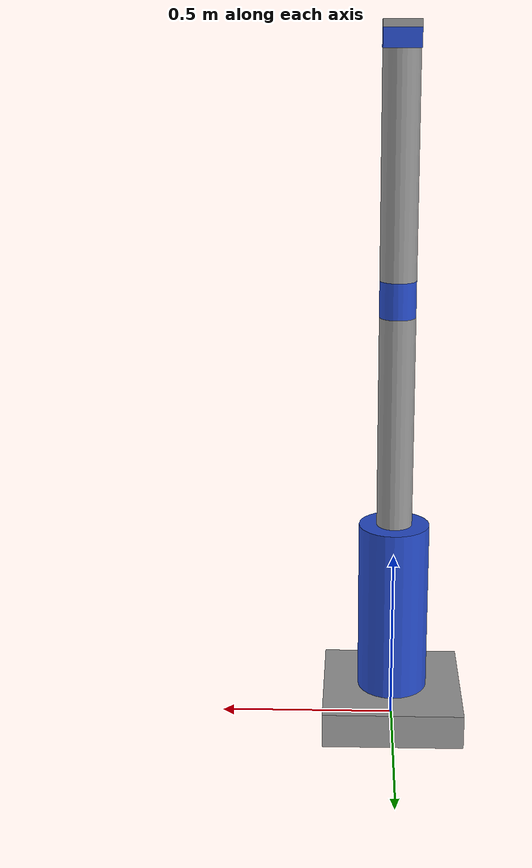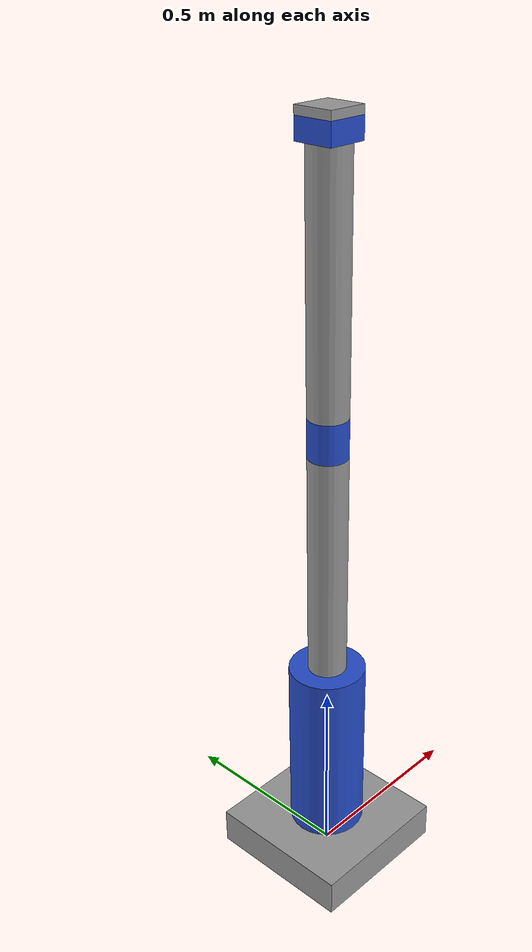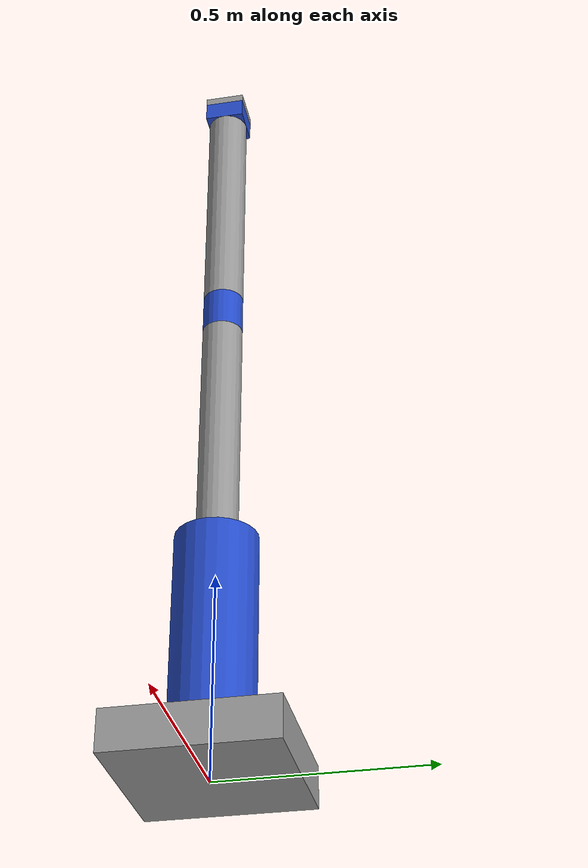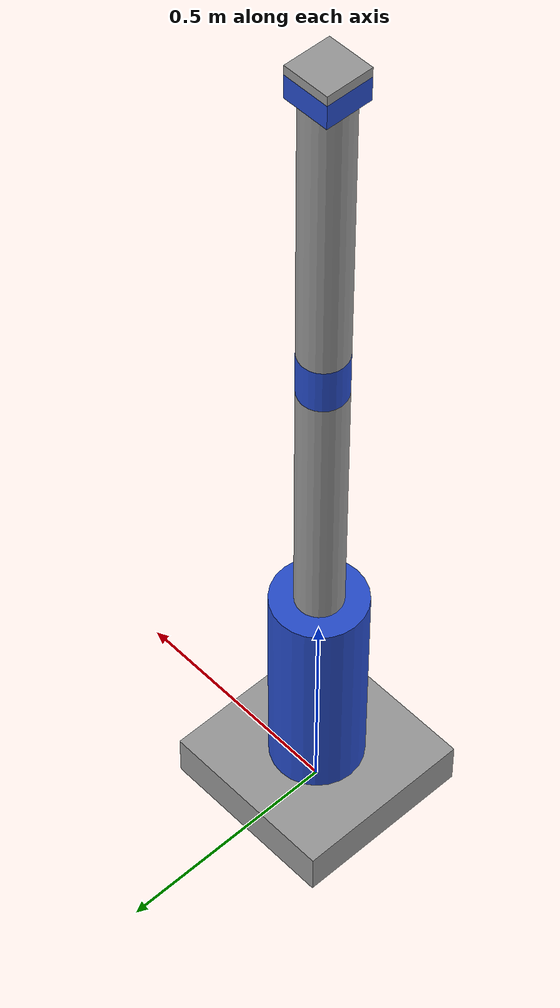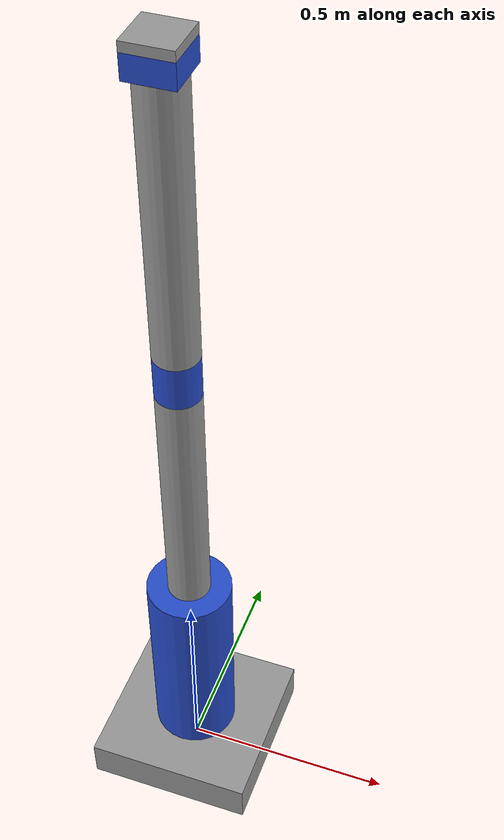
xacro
<?xml version="1.0" encoding="UTF-8"?>
<robot xmlns:xacro="http://www.ros.org/wiki/xacro">

    <link name="base_link">
        <visual>
            <geometry>
                <box size= "0.4 0.4 0.1"/>
            </geometry>
            <origin xyz="0 0 0.05" rpy="0 0 0"/>
            <material name="grey"/>
        </visual>
        <collision>
            <geometry>
                <box size= "0.4 0.4 0.1"/>
            </geometry>
            <origin xyz="0 0 0.05" rpy="0 0 0"/>
        </collision>
    </link>

    <link name="chest_link">
        <visual>
            <geometry>
                <cylinder length="0.5" radius="0.1"/>
            </geometry>
            <origin xyz="0 0 0.25" rpy="0 0 0"/>
            <material name="blue"/>
        </visual>
        <collision>
            <geometry>
                <box size="0.2 0.2 0.5"/>
            </geometry>
            <origin xyz="0 0 0.25" rpy="0 0 0"/>
        </collision>
    </link>

    <link name="shoulder_link">
        <visual>
            <geometry>
                <cylinder length="0.6" radius="0.05"/>
            </geometry>
            <origin xyz="0 0 0.3" rpy="0 0 0"/>
            <material name="grey"/>
        </visual>
        <collision>
            <geometry>
                <box size="0.1 0.1 0.6"/>
            </geometry>
            <origin xyz="0 0 0.3" rpy="0 0 0"/>
        </collision>
    </link>

    <link name="elbow_link">
        <visual>
            <geometry>
                <cylinder length="0.1" radius="0.05"/>
            </geometry>
            <origin xyz="0 0 0.05" rpy="0 0 0"/>
            <material name="blue"/>
        </visual>
        <collision>
            <geometry>
                <box size="0.1 0.1 0.1"/>
            </geometry>
            <origin xyz="0 0 0.05" rpy="0 0 0"/>
        </collision>
    </link>

    <link name="forearm_link">
        <visual>
            <geometry>
                <cylinder length="0.6" radius="0.05"/>
            </geometry>
            <origin xyz="0 0 0.3" rpy="0 0 0"/>
            <material name="grey"/>
        </visual>
        <collision>
            <geometry>
                <box size="0.1 0.1 0.6"/>
            </geometry>
            <origin xyz="0 0 0.3" rpy="0 0 0"/>
        </collision>
    </link>

    <link name="wrist_link">
        <visual>
            <geometry>
                <box size="0.1 0.1 0.05"/>
            </geometry>
            <origin xyz="0 0 0.025" rpy="0 0 0"/>
            <material name="blue"/>
        </visual>
        <collision>
            <geometry>
                <box size="0.1 0.1 0.05"/>
            </geometry>
            <origin xyz="0 0 0.025" rpy="0 0 0"/>
        </collision>
    </link>

    <link name="hand_link">
        <visual>
            <geometry>
                <box size="0.1 0.1 0.02"/>
            </geometry>
            <origin xyz="0 0 0.01" rpy="0 0 0"/>
            <material name="grey"/>
        </visual>
        <collision>
            <geometry>
                <box size="0.1 0.1 0.02"/>
            </geometry>
            <origin xyz="0 0 0.01" rpy="0 0 0"/>
        </collision>
    </link>

    <link name="tool_link"/>

    <joint name="chest_to_base_joint" type="revolute">
        <parent link="base_link"/>
        <child link="chest_link"/>
        <origin xyz="0 0 0.1" rpy="0 0 0"/>
        <axis xyz="0 0 1"/>
        <limit effort="1000.0" velocity="1.0" lower="-3.14" upper="3.14"/>
    </joint>

    <joint name="shoulder_to_chest_joint" type="revolute">
        <parent link="chest_link"/>
        <child link="shoulder_link"/>
        <origin xyz="0 0 0.5" rpy="0 0 0"/>
        <axis xyz="0 1 0"/>
        <limit effort="1000.0" velocity="1.0" lower="-1.57" upper="1.57"/>
    </joint>

    <joint name="elbow_to_shoulder_joint" type="revolute">
        <parent link="shoulder_link"/>
        <child link="elbow_link"/>
        <origin xyz="0 0 0.6" rpy="0 0 0"/>
        <axis xyz="0 0 1"/>
        <limit effort="1000.0" velocity="1.0" lower="-3.14" upper="3.14"/>
    </joint>

    <joint name="forearm_to_elbow_joint" type="revolute">
        <parent link="elbow_link"/>
        <child link="forearm_link"/>
        <origin xyz="0 0 0.1" rpy="0 0 0"/>
        <axis xyz="0 1 0"/>
        <limit effort="1000.0" velocity="1.0" lower="-1.57" upper="1.57"/>
    </joint>

    <joint name="wrist_to_forearm_joint" type="revolute">
        <parent link="forearm_link"/>
        <child link="wrist_link"/>
        <origin xyz="0 0 0.6" rpy="0 0 0"/>
        <axis xyz="0 1 0"/>
        <limit effort="1000.0" velocity="1.0" lower="-1.57" upper="1.57"/>
    </joint>

    <joint name="hand_to_wrist_joint" type="continuous">
        <parent link="wrist_link"/>
        <child link="hand_link"/>
        <origin xyz="0 0 0.05" rpy="0 0 0"/>
        <axis xyz="0 0 1"/>
    </joint>

    <joint name="tool_to_hand_joint" type="fixed">
        <parent link="hand_link"/>
        <child link="tool_link"/>
        <origin xyz="0 0 0.02" rpy="0 0 0"/>
        <axis xyz="0 0 1"/>
    </joint>
</robot>
